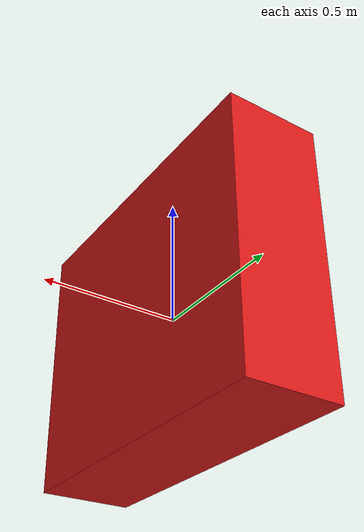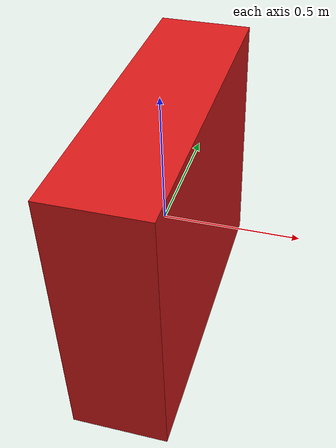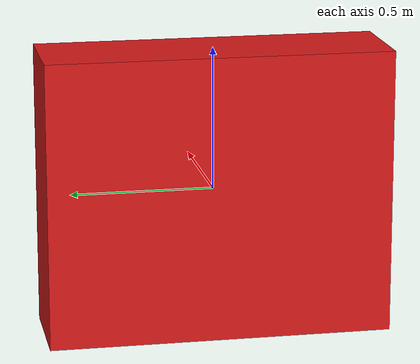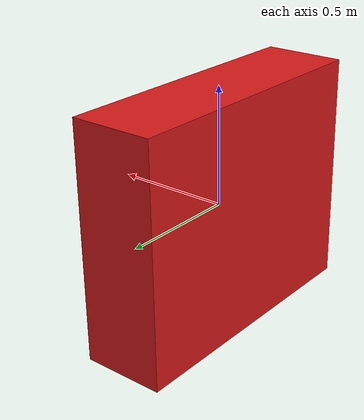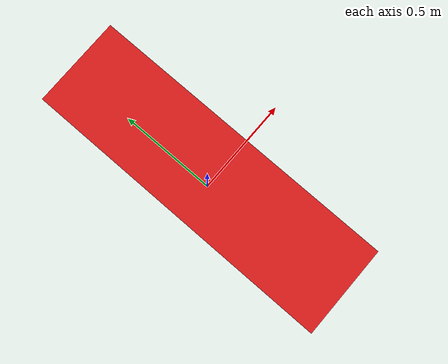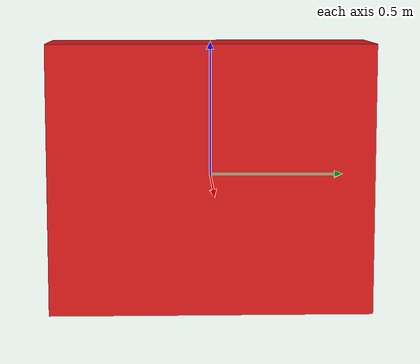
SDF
<?xml version="1.0"?>
<sdf version="1.7">
  <model name="dynnav_route_blocker">
    <static>true</static>
    <link name="blocker_link">
      <collision name="collision">
        <geometry>
          <box>
            <size>0.35 1.20 1.00</size>
          </box>
        </geometry>
      </collision>
      <visual name="visual">
        <geometry>
          <box>
            <size>0.35 1.20 1.00</size>
          </box>
        </geometry>
        <material>
          <ambient>0.85 0.10 0.10 1.0</ambient>
          <diffuse>0.85 0.10 0.10 1.0</diffuse>
        </material>
      </visual>
    </link>
  </model>
</sdf>
